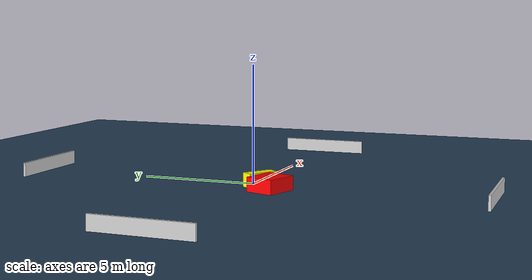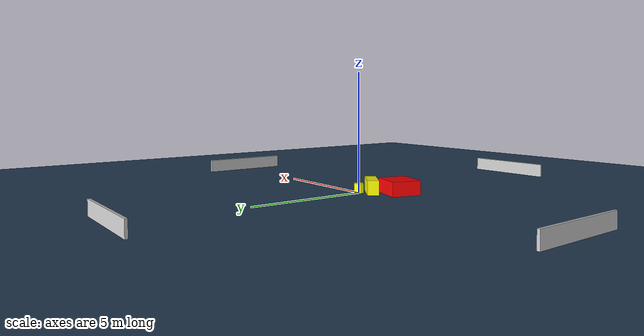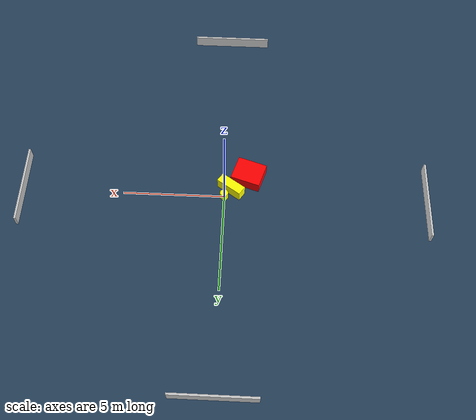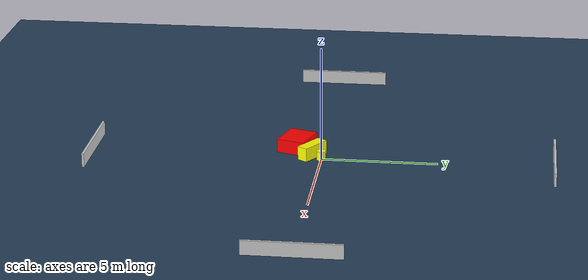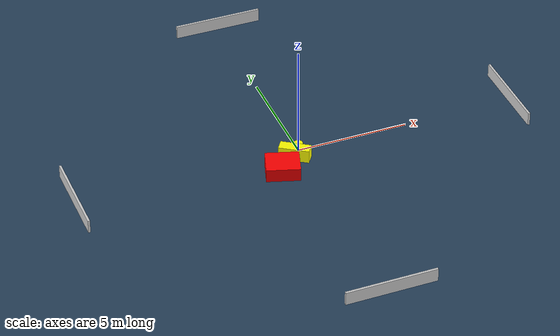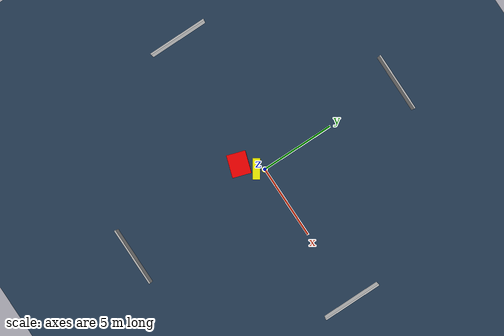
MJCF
<?xml version="1.0" ?>
<mujoco model="generated_environment">
  <option timestep="0.01" integrator="RK4" cone="elliptic"/>
  <default>
    <geom density="1"/>
  </default>
  <asset>
    <texture builtin="gradient" height="3072" name="skybox" rgb1="0.3 0.5 0.7" rgb2="0 0 0" type="skybox" width="512"/>
    <texture builtin="checker" height="300" name="groundplane" rgb1="0.2 0.3 0.4" rgb2="0.1 0.2 0.3" type="2d" width="300"/>
    <material name="groundplane" reflectance="0.2" texrepeat="5 5" texture="groundplane"/>
  </asset>
  <worldbody>
    <light dir="0 0 -1" directional="true" pos="0 0 1.5"/>
    <geom condim="3" friction="0.5 0.005 0.001" material="groundplane" name="floor" pos="0 0 0" size="0 0 0.05" type="plane"/>
    <body name="walls">
      <geom name="wall_1" condim="4" pos="-10.0 0.0 0.3" rgba="0.800000011920929 0.800000011920929 0.800000011920929 1.0" size="0.05 2.0 0.3" type="box"/>
      <geom name="wall_2" condim="4" pos="10.0 0.0 0.3" rgba="0.800000011920929 0.800000011920929 0.800000011920929 1.0" size="0.05 2.0 0.3" type="box"/>
      <geom name="wall_3" condim="4" pos="0.0 -10.0 0.3" rgba="0.800000011920929 0.800000011920929 0.800000011920929 1.0" size="2.0 0.05 0.3" type="box"/>
      <geom name="wall_4" condim="4" pos="0.0 10.0 0.3" rgba="0.800000011920929 0.800000011920929 0.800000011920929 1.0" size="2.0 0.05 0.3" type="box"/>
    </body>
    <body name="robot">
      <joint name="joint_x" type="slide" pos="0 0 0" axis="1 0 0"/>
      <joint name="joint_y" type="slide" pos="0 0 0" axis="0 1 0"/>
      <geom name="robot" type="cylinder" pos="0.0 0.0 0.2" size="0.2 0.2 0.0" mass="5.0" friction="1.0 0.005 0.0001" condim="4" rgba="1.0 1.0 0.0 1.0"/>
    </body>
    <body name="obstacle_1_movable">
      <geom name="obstacle_1_movable" condim="4" pos="-0.32510716477783047 -0.4251149172052189 0.3" euler="0 0 235.93793626436016" friction="0.0 0.005 0.001" rgba="1.0 1.0 0.0 1.0" size="0.23935861631042554 0.6724656518887961 0.3" type="box" mass="0.1"/>
      <joint type="free"/>
    </body>
    <body name="obstacle_2_static">
      <geom name="obstacle_2_static" condim="4" pos="-1.1807082161371023 -1.1868058801534314 0.3" euler="0 0 162.23424217740333" friction="0.0 0.005 0.001" rgba="1.0 0.0 0.0 1.0" size="0.737339627297041 0.618664376508143 0.3" type="box"/>
    </body>
  </worldbody>
  <actuator>
    <motor name="actuator_x" joint="joint_x" gear="1" ctrlrange="-1 1"/>
    <motor name="actuator_y" joint="joint_y" gear="1" ctrlrange="-1 1"/>
  </actuator>
</mujoco>
